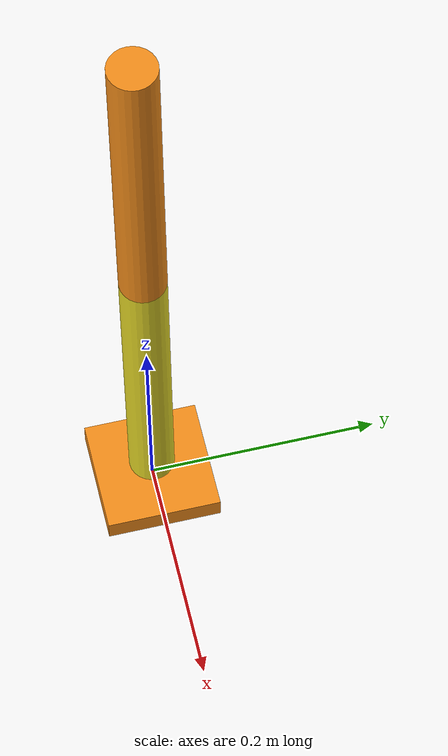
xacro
<?xml version="1.0"?>
<robot xmlns:xacro="http://www.ros.org/wiki/xacro">
    <xacro:property name="box_length" value="0.1" />
    <xacro:property name="box_width" value="0.1" />
    <xacro:property name="box_height" value="0.02" />
    <xacro:property name="forearm_radius" value="0.02" />
    <xacro:property name="forearm_height" value="0.3" />
    <xacro:property name="hand_radius" value="0.02" />
    <xacro:property name="hand_height" value="0.3" />

    <link name="arm_base_link">
        <visual>
            <origin xyz="0 0 0" rpy="0 0 0" />
            <geometry>
                <box size= "${box_length} ${box_width} ${box_height}" />
            </geometry>
            <material name="orange"/>
        </visual>
        <collision>
            <origin xyz="0 0 0" rpy="0 0 0" />
            <geometry>
                <box size= "${box_length} ${box_width} ${box_height}" />
            </geometry>
        </collision>
        <xacro:box_inertia m="0.5" x="${box_length}" y="${box_width}" z="${box_height}"
                           o_xyz="0 0 0" o_rpy="0 0 0" />
    </link>

    <link name="forearm_link">
        <visual>
            <geometry>
                <cylinder radius="${forearm_radius}" length="${forearm_height}" />
            </geometry>
            <origin xyz="0 0 ${(forearm_height/2)}" rpy="0 0 0" />
            <material name="yellow"/>
        </visual>
        <collision>
            <origin xyz="0 0 ${(forearm_height/2)}" rpy="0 0 0" />
            <geometry>
                <cylinder radius="${forearm_radius}" length="${forearm_height}" />
            </geometry>
        </collision>
        <xacro:cylinder_inertia m="0.3" r="${forearm_radius}" l="${forearm_height}"
                           o_xyz="0 0 0" o_rpy="0 0 0" />
    </link>

    <link name="hand_link">
        <visual>
            <origin xyz="0 0 ${hand_height/2}" rpy="0 0 0" />
            <geometry>
                <cylinder radius="${hand_radius}" length="${hand_height}" />
            </geometry>
            <material name="orange"/>
        </visual>
        <collision>
            <origin xyz="0 0 ${hand_height/2}" rpy="0 0 0" />
            <geometry>
                <cylinder radius="${hand_radius}" length="${hand_height}" />
            </geometry>
        </collision>
        <xacro:cylinder_inertia m="0.3" r="${hand_radius}" l="${hand_height}"
                           o_xyz="0 0 0" o_rpy="0 0 0" />
    </link>

    <joint name="arm_base_forearm_joint" type="revolute">
        <parent link="arm_base_link" />
        <child link="forearm_link" />
        <origin xyz="0 0 ${box_height}" rpy="0 0 0" />
        <axis xyz="0 1 0" />
        <limit lower="0" upper="${pi/2}" effort="100" velocity="100" />
        <dynamics friction="0.3" damping="0.3" />
    </joint>
    <joint name="forearm_hand_joint" type="revolute">
        <parent link="forearm_link" />
        <child link="hand_link" />
        <origin xyz="0 0 ${forearm_height}" rpy="0 0 0" />
        <axis xyz="0 1 0" />
        <limit lower="0" upper="${pi/2}" effort="100" velocity="100" />
        <dynamics friction="0.3" damping="0.3" />
    </joint>

</robot>
